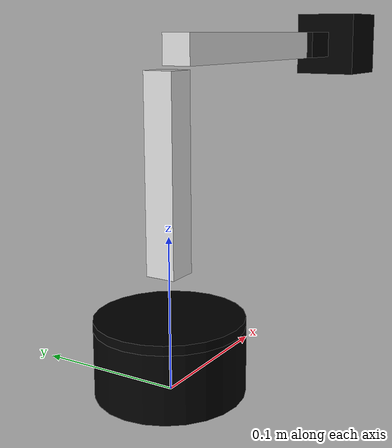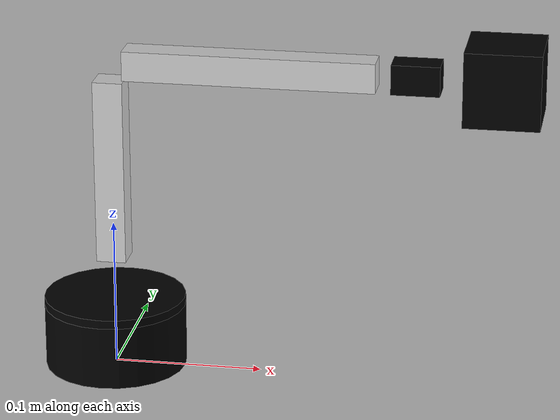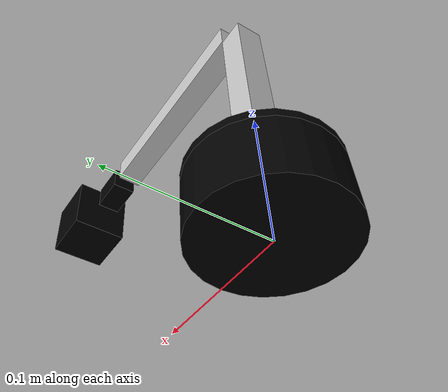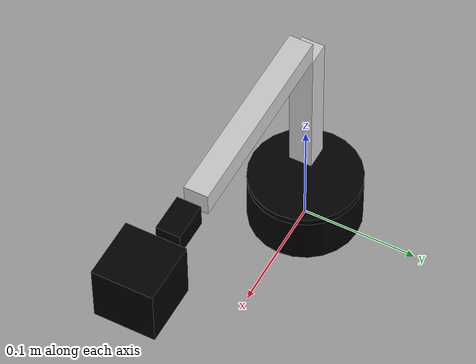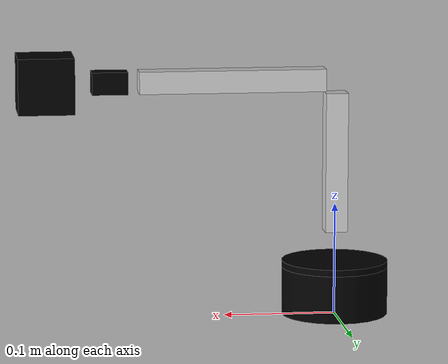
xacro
<?xml version="1.0" ?>
<robot name="lynxmotion_al5d" xmlns:xacro="http://ros.org/wiki/xacro">
  <link name="base_link"/>
  <xacro:include filename="$(find lynxmotion_al5d_support)/urdf/al5d_macro.xacro"/>
  <lynxmotion_al5d prefix="al5d_" parent_link="base_link">
    <origin xyz="0 0 0"/>
  </lynxmotion_al5d>
</robot>

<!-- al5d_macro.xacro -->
<robot xmlns:xacro="http://ros.org/wiki/xacro">

  <xacro:property name="M_PI" value="3.14159"/>

  <property name="base_height" value="0.043" />
  <property name="base_radius" value="0.048" />
  <property name="link1_height" value="0.006" />
  <property name="link1_radius" value="0.048" />
  <property name="link2_offset" value="0.022" />
  <property name="link2_length" value="0.14605" />
  <property name="link3_length" value="0.187325" />
  <property name="link4_length" value="0.032" />
  <property name="gripper_offset" value="0.016" />

  <xacro:macro name="lynxmotion_al5d" params="prefix parent_link *origin">
    <!-- attach -->
    <joint name="arm_base_joint" type="fixed">
      <insert_block name="origin" />
      <parent link="${parent_link}"/>
      <child link="${prefix}base_link" />
    </joint>
    <!-- links -->
    <link name="${prefix}base_link">
      <visual>
        <origin xyz="0 0 ${base_height/2}" rpy="0 0 0"/>
        <geometry>
          <cylinder length="${base_height}" radius="${base_radius}"/>
        </geometry>
        <material name="black">
          <color rgba="0 0 0 1"/>
        </material>
      </visual>
      <collision>
        <origin xyz="0 0 ${base_height/2}" rpy="0 0 0"/>
        <geometry>
          <cylinder length="${base_height}" radius="${link1_radius}"/>
        </geometry>
      </collision>
    </link>
    <link name="${prefix}link_1">
      <visual>
        <origin xyz="0 0 0" rpy="0 0 0"/>
        <geometry>
          <cylinder length="${link1_height}" radius="${link1_radius}"/>
        </geometry>
        <material name="black">
          <color rgba="0 0 0 1"/>
        </material>
      </visual>
      <collision>
        <origin xyz="0 0 0" rpy="0 0 0"/>
        <geometry>
           <cylinder length="${link1_height}" radius="${base_radius}"/>
        </geometry>
      </collision>
    </link>
    <link name="${prefix}link_2">
      <visual>
        <origin xyz="0 0 ${base_height + link1_height + link2_offset}" rpy="0 0 0"/>
        <geometry>
          <box size="0.02 .02 ${link2_length-0.02}"/>
        </geometry>
        <material name="silver">
          <color rgba="0.8 0.8 0.8 1"/>
        </material>
      </visual>
      <collision>
        <origin xyz="0 0 ${base_height + link1_height + link2_offset}" rpy="0 0 0"/>
        <geometry>
          <box size="0.02 .02 ${link2_length}"/>
        </geometry>
      </collision>
    </link>
    <link name="${prefix}link_3">
      <visual>
        <origin xyz="0 0 ${link3_length/2}" rpy="0 0 0"/>
        <geometry>
          <box size="0.02 0.02 ${link3_length-0.02}"/>
        </geometry>
        <material name="silver">
          <color rgba="0.8 0.8 0.8 1"/>
        </material>
      </visual>
      <collision>
        <origin xyz="0 0 ${link3_length/2}" rpy="0 0 0"/>
        <geometry>
          <box size="0.02 0.02 ${link3_length}"/>
        </geometry>
      </collision>
    </link>
    <link name="${prefix}link_4">
      <visual>
        <origin xyz="0 0 ${link4_length/2}" rpy="0 0 0"/>
        <geometry>
          <box size="0.02 0.02 ${link4_length}"/>>
        </geometry>
        <material name="black">
          <color rgba="0 0 0 1"/>
        </material>
      </visual>
      <collision>
        <origin xyz="0 0 ${link4_length/2}" rpy="0 0 0"/>
        <geometry>
          <box size="0.02 0.02 ${link4_length}"/>
        </geometry>
      </collision>
    </link>
    <link name="${prefix}gripper">
      <visual>
        <origin xyz="0 0 0.025" rpy="0 0 0"/>
        <geometry>
          <box size="0.05 0.05 0.05"/>
        </geometry>
        <material name="black">
          <color rgba="0 0 0 1"/>
        </material>
      </visual>
      <collision>
        <origin xyz="0 0 0.025" rpy="0 0 0"/>
        <geometry>
          <box size="0.05 0.05 0.05"/>
        </geometry>
      </collision>
    </link>

    <!-- joints -->
    <joint name="${prefix}joint_1" type="revolute">
      <origin xyz="0 0 ${base_height + link1_height/2}" rpy="0 0 0"/>
      <parent link="${prefix}base_link"/>
      <child link="${prefix}link_1"/>
      <axis xyz="0 0 -1"/>
      <limit lower="-${M_PI/2}" upper="${M_PI/2}" effort="0" velocity="3.67"/>
    </joint>
    <joint name="${prefix}joint_2" type="revolute">
      <origin xyz="0 0 ${link2_offset}" rpy="0 0 0"/>
      <parent link="${prefix}link_1"/>
      <child link="${prefix}link_2"/>
      <axis xyz="0 -1 0"/>
      <limit lower="-${M_PI/2}" upper="${M_PI/2}" effort="0" velocity="3.32"/>
    </joint>
    <joint name="${prefix}joint_3" type="revolute">
      <origin xyz="0 0 ${link2_length}" rpy="0 ${M_PI/2} 0" />
      <parent link="${prefix}link_2"/>
      <child link="${prefix}link_3"/>
      <axis xyz="0 1 0"/>
      <limit lower="-${M_PI/2}" upper="${M_PI/2}" effort="0" velocity="3.67"/>
    </joint>
    <joint name="${prefix}joint_4" type="revolute">
      <origin xyz="0 0 ${link3_length}" rpy="0 0 0"/>
      <parent link="${prefix}link_3"/>
      <child link="${prefix}link_4"/>
      <axis xyz="0 -1 0"/>
      <limit lower="-${M_PI/2}" upper="${M_PI/2}" effort="0" velocity="6.98"/>
    </joint>
    <joint name="${prefix}gripper" type="revolute">
      <origin xyz="0 0 ${link4_length + gripper_offset}" rpy="0 0 0"/>
      <parent link="${prefix}link_4"/>
      <child link="${prefix}gripper"/>
      <axis xyz="-1 0 0"/>
      <limit lower="-${M_PI/2}" upper="${M_PI/2}" effort="0" velocity="6.98"/>
    </joint>
  </xacro:macro>
</robot>
